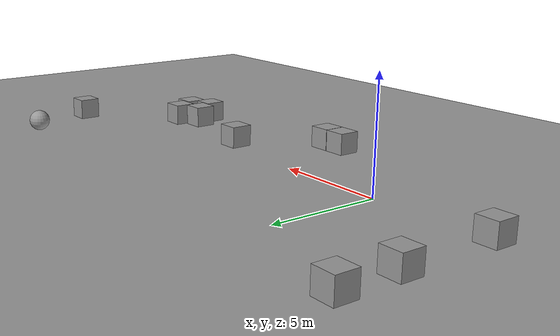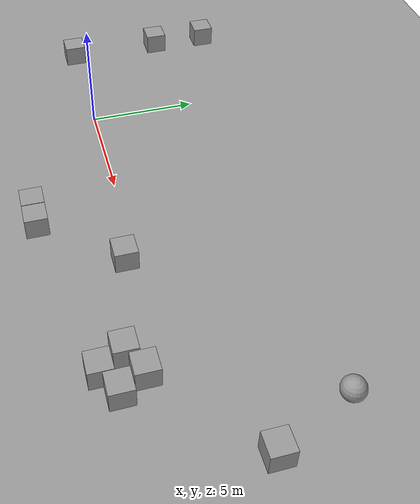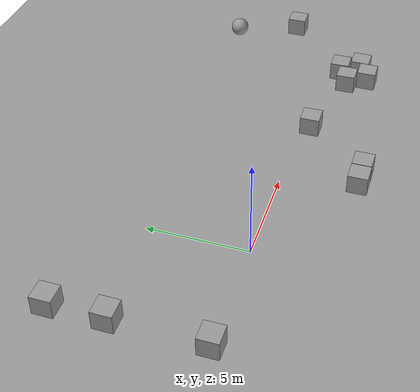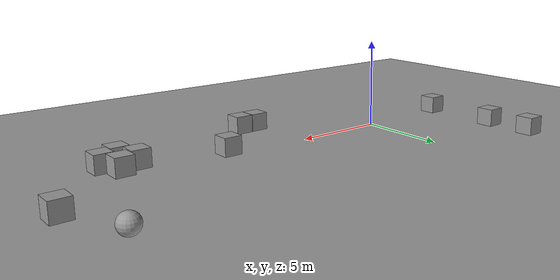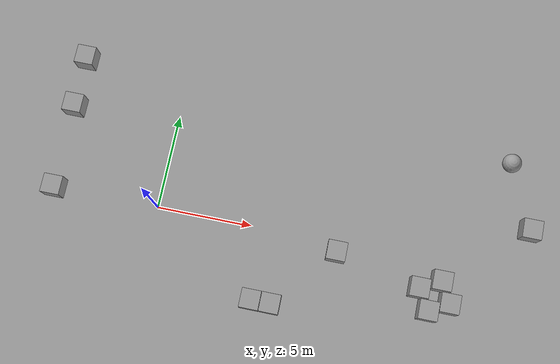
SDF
<sdf version="1.6">
 <world name="default">
  <light name="sun" type="directional">
   <pose>0 0 10 0 -0 0</pose>
   <diffuse>0.8 0.8 0.8 1</diffuse>
   <specular>0.1 0.1 0.1 1</specular>
   <attenuation>
    <range>1000</range>
    <constant>0.9</constant>
    <linear>0.01</linear>
    <quadratic>0.001</quadratic>
   </attenuation>
   <direction>-0.5 0.5 -1</direction>
  </light>
  <gravity>0 0 -9.8</gravity>
  <magnetic_field>6e-06 2.3e-05 -4.2e-05</magnetic_field>
  <atmosphere type="adiabatic"/>
  <physics name="default_physics" default="0" type="ode">
   <max_step_size>0.001</max_step_size>
   <real_time_factor>1</real_time_factor>
   <real_time_update_rate>1000</real_time_update_rate>
  </physics>
  <scene>
   <ambient>0.4 0.4 0.4 1</ambient>
   <background>0.7 0.7 0.7 1</background>
   <shadows>1</shadows>
   <origin_visual>0</origin_visual>
  </scene>
  <spherical_coordinates>
   <surface_model>EARTH_WGS84</surface_model>
   <latitude_deg>0</latitude_deg>
   <longitude_deg>0</longitude_deg>
   <elevation>0</elevation>
   <heading_deg>0</heading_deg>
  </spherical_coordinates>
  <model name="unit_box_0">
   <static>1</static>
   <pose>-5.55705 -0.035195 0.5 0 -0 0</pose>
   <link name="link">
    <inertial>
     <mass>1</mass>
     <inertia>
      <ixx>0.166667</ixx>
      <ixy>0</ixy>
      <ixz>0</ixz>
      <iyy>0.166667</iyy>
      <iyz>0</iyz>
      <izz>0.166667</izz>
     </inertia>
    </inertial>
    <collision name="collision"><geometry><box><size>1 1 1</size></box></geometry></collision>
    <visual name="visual">
     <geometry><box><size>1 1 1</size></box></geometry>
     <material>
      <script><name>Gazebo/Grey</name><uri>file://media/materials/scripts/gazebo.material</uri></script>
     </material>
    </visual>
   </link>
  </model>
  <model name="unit_box_1">
   <static>1</static>
   <pose>-5.622 7.19153 0.5 0 -0 0</pose>
   <link name="link">
    <inertial>
     <mass>1</mass>
     <inertia>
      <ixx>0.166667</ixx>
      <ixy>0</ixy>
      <ixz>0</ixz>
      <iyy>0.166667</iyy>
      <iyz>0</iyz>
      <izz>0.166667</izz>
     </inertia>
    </inertial>
    <collision name="collision"><geometry><box><size>1 1 1</size></box></geometry></collision>
    <visual name="visual">
     <geometry><box><size>1 1 1</size></box></geometry>
     <material>
      <script><name>Gazebo/Grey</name><uri>file://media/materials/scripts/gazebo.material</uri></script>
     </material>
    </visual>
   </link>
  </model>
  <model name="unit_box_2">
   <static>1</static>
   <pose>-5.59732 4.48397 0.5 0 -0 0</pose>
   <link name="link">
    <inertial>
     <mass>1</mass>
     <inertia>
      <ixx>0.166667</ixx>
      <ixy>0</ixy>
      <ixz>0</ixz>
      <iyy>0.166667</iyy>
      <iyz>0</iyz>
      <izz>0.166667</izz>
     </inertia>
    </inertial>
    <collision name="collision"><geometry><box><size>1 1 1</size></box></geometry></collision>
    <visual name="visual">
     <geometry><box><size>1 1 1</size></box></geometry>
     <material>
      <script><name>Gazebo/Grey</name><uri>file://media/materials/scripts/gazebo.material</uri></script>
     </material>
    </visual>
   </link>
  </model>
  <model name="unit_box_3">
   <static>1</static>
   <pose>9.62475 -0.496823 0.5 0 -0 0</pose>
   <link name="link">
    <inertial>
     <mass>1</mass>
     <inertia>
      <ixx>0.166667</ixx>
      <ixy>0</ixy>
      <ixz>0</ixz>
      <iyy>0.166667</iyy>
      <iyz>0</iyz>
      <izz>0.166667</izz>
     </inertia>
    </inertial>
    <collision name="collision"><geometry><box><size>1 1 1</size></box></geometry></collision>
    <visual name="visual">
     <geometry><box><size>1 1 1</size></box></geometry>
     <material>
      <script><name>Gazebo/Grey</name><uri>file://media/materials/scripts/gazebo.material</uri></script>
     </material>
    </visual>
   </link>
  </model>
  <model name="unit_box_4">
   <static>1</static>
   <pose>5.78664 -3.77812 0.5 0 -0 0</pose>
   <link name="link">
    <inertial>
     <mass>1</mass>
     <inertia>
      <ixx>0.166667</ixx>
      <ixy>0</ixy>
      <ixz>0</ixz>
      <iyy>0.166667</iyy>
      <iyz>0</iyz>
      <izz>0.166667</izz>
     </inertia>
    </inertial>
    <collision name="collision"><geometry><box><size>1 1 1</size></box></geometry></collision>
    <visual name="visual">
     <geometry><box><size>1 1 1</size></box></geometry>
     <material>
      <script><name>Gazebo/Grey</name><uri>file://media/materials/scripts/gazebo.material</uri></script>
     </material>
    </visual>
   </link>
  </model>
  <model name="unit_box_5">
   <static>1</static>
   <pose>6.80892 -3.77721 0.5 0 -0 0</pose>
   <link name="link">
    <inertial>
     <mass>1</mass>
     <inertia>
      <ixx>0.166667</ixx>
      <ixy>0</ixy>
      <ixz>0</ixz>
      <iyy>0.166667</iyy>
      <iyz>0</iyz>
      <izz>0.166667</izz>
     </inertia>
    </inertial>
    <collision name="collision"><geometry><box><size>1 1 1</size></box></geometry></collision>
    <visual name="visual">
     <geometry><box><size>1 1 1</size></box></geometry>
     <material>
      <script><name>Gazebo/Grey</name><uri>file://media/materials/scripts/gazebo.material</uri></script>
     </material>
    </visual>
   </link>
  </model>
  <model name="unit_box_6">
   <static>1</static>
   <pose>15.1801 -0.927544 0.5 0 -0 0</pose>
   <link name="link">
    <inertial>
     <mass>1</mass>
     <inertia>
      <ixx>0.166667</ixx>
      <ixy>0</ixy>
      <ixz>0</ixz>
      <iyy>0.166667</iyy>
      <iyz>0</iyz>
      <izz>0.166667</izz>
     </inertia>
    </inertial>
    <collision name="collision"><geometry><box><size>1 1 1</size></box></geometry></collision>
    <visual name="visual">
     <geometry><box><size>1 1 1</size></box></geometry>
     <material>
      <script><name>Gazebo/Grey</name><uri>file://media/materials/scripts/gazebo.material</uri></script>
     </material>
    </visual>
   </link>
  </model>
  <model name="unit_box_7">
   <static>1</static>
   <pose>14.1049 -1.48483 0.5 0 -0 0</pose>
   <link name="link">
    <inertial>
     <mass>1</mass>
     <inertia>
      <ixx>0.166667</ixx>
      <ixy>0</ixy>
      <ixz>0</ixz>
      <iyy>0.166667</iyy>
      <iyz>0</iyz>
      <izz>0.166667</izz>
     </inertia>
    </inertial>
    <collision name="collision"><geometry><box><size>1 1 1</size></box></geometry></collision>
    <visual name="visual">
     <geometry><box><size>1 1 1</size></box></geometry>
     <material>
      <script><name>Gazebo/Grey</name><uri>file://media/materials/scripts/gazebo.material</uri></script>
     </material>
    </visual>
   </link>
  </model>
  <model name="unit_sphere_0">
   <static>1</static>
   <pose>17.835 5.94027 0.5 0 -0 0</pose>
   <link name="link">
    <inertial>
     <mass>1</mass>
     <inertia><ixx>0.1</ixx><ixy>0</ixy><ixz>0</ixz><iyy>0.1</iyy><iyz>0</iyz><izz>0.1</izz></inertia>
    </inertial>
    <collision name="collision"><geometry><sphere><radius>0.5</radius></sphere></geometry></collision>
    <visual name="visual">
     <geometry><sphere><radius>0.5</radius></sphere></geometry>
     <material>
      <script><name>Gazebo/Grey</name><uri>file://media/materials/scripts/gazebo.material</uri></script>
     </material>
    </visual>
   </link>
  </model>
  <model name="ground_plane_0">
   <static>1</static>
   <link name="link">
    <collision name="collision">
     <geometry><plane><normal>0 0 1</normal><size>100 100</size></plane></geometry>
     <surface><friction><ode><mu>100</mu><mu2>50</mu2></ode></friction></surface>
    </collision>
    <visual name="visual">
     <cast_shadows>0</cast_shadows>
     <geometry><plane><normal>0 0 1</normal><size>100 100</size></plane></geometry>
     <material>
      <script><uri>file://media/materials/scripts/gazebo.material</uri><name>Gazebo/Grey</name></script>
     </material>
    </visual>
   </link>
   <pose>0.040777 0.002647 0 0 -0 0</pose>
  </model>
  <model name="unit_box_8">
   <static>1</static>
   <pose>14.7188 -2.53868 0.5 0 -0 0</pose>
   <link name="link">
    <inertial>
     <mass>1</mass>
     <inertia>
      <ixx>0.166667</ixx>
      <ixy>0</ixy>
      <ixz>0</ixz>
      <iyy>0.166667</iyy>
      <iyz>0</iyz>
      <izz>0.166667</izz>
     </inertia>
    </inertial>
    <collision name="collision"><geometry><box><size>1 1 1</size></box></geometry></collision>
    <visual name="visual">
     <geometry><box><size>1 1 1</size></box></geometry>
     <material>
      <script><name>Gazebo/Grey</name><uri>file://media/materials/scripts/gazebo.material</uri></script>
     </material>
    </visual>
   </link>
  </model>
  <model name="unit_box_9">
   <static>1</static>
   <pose>15.7361 -1.9894 0.5 0 -0 0</pose>
   <link name="link">
    <inertial>
     <mass>1</mass>
     <inertia>
      <ixx>0.166667</ixx>
      <ixy>0</ixy>
      <ixz>0</ixz>
      <iyy>0.166667</iyy>
      <iyz>0</iyz>
      <izz>0.166667</izz>
     </inertia>
    </inertial>
    <collision name="collision"><geometry><box><size>1 1 1</size></box></geometry></collision>
    <visual name="visual">
     <geometry><box><size>1 1 1</size></box></geometry>
     <material>
      <script><name>Gazebo/Grey</name><uri>file://media/materials/scripts/gazebo.material</uri></script>
     </material>
    </visual>
   </link>
  </model>
  <model name="unit_box_10">
   <static>1</static>
   <pose>19.2836 2.58892 0.5 0 -0 0</pose>
   <link name="link">
    <inertial>
     <mass>1</mass>
     <inertia>
      <ixx>0.166667</ixx>
      <ixy>0</ixy>
      <ixz>0</ixz>
      <iyy>0.166667</iyy>
      <iyz>0</iyz>
      <izz>0.166667</izz>
     </inertia>
    </inertial>
    <collision name="collision"><geometry><box><size>1 1 1</size></box></geometry></collision>
    <visual name="visual">
     <geometry><box><size>1 1 1</size></box></geometry>
     <material>
      <script><name>Gazebo/Grey</name><uri>file://media/materials/scripts/gazebo.material</uri></script>
     </material>
    </visual>
   </link>
  </model>
 </world>
</sdf>
